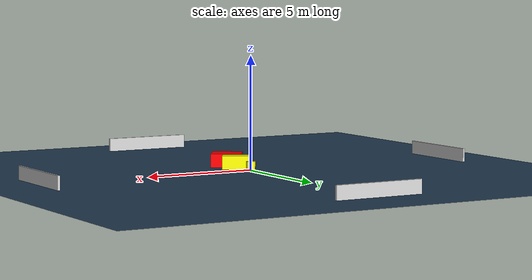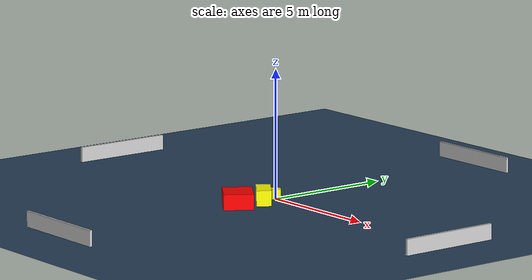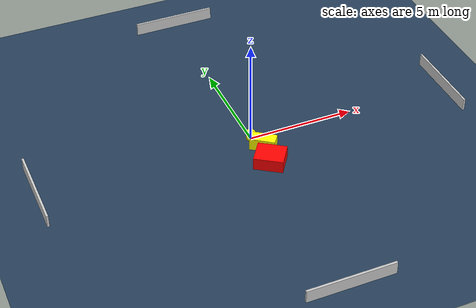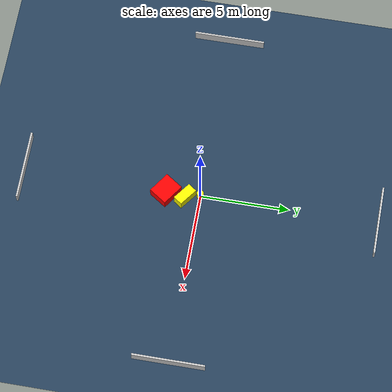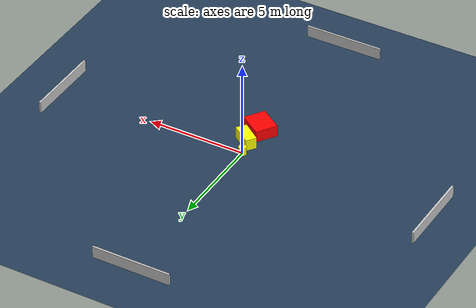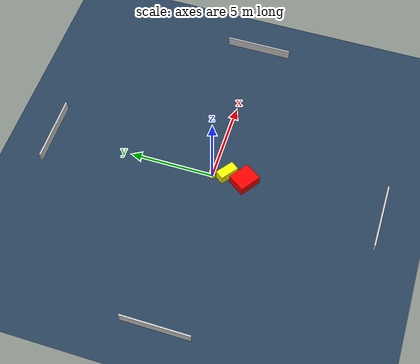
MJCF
<?xml version="1.0" ?>
<mujoco model="generated_environment">
  <option timestep="0.01" integrator="RK4" cone="elliptic"/>
  <default>
    <geom density="1"/>
  </default>
  <asset>
    <texture builtin="gradient" height="3072" name="skybox" rgb1="0.3 0.5 0.7" rgb2="0 0 0" type="skybox" width="512"/>
    <texture builtin="checker" height="300" name="groundplane" rgb1="0.2 0.3 0.4" rgb2="0.1 0.2 0.3" type="2d" width="300"/>
    <material name="groundplane" reflectance="0.2" texrepeat="5 5" texture="groundplane"/>
  </asset>
  <worldbody>
    <light dir="0 0 -1" directional="true" pos="0 0 1.5"/>
    <geom condim="3" friction="0.5 0.005 0.001" material="groundplane" name="floor" pos="0 0 0" size="0 0 0.05" type="plane"/>
    <body name="walls">
      <geom name="wall_1" condim="4" pos="-10.0 0.0 0.3" rgba="0.800000011920929 0.800000011920929 0.800000011920929 1.0" size="0.05 2.0 0.3" type="box"/>
      <geom name="wall_2" condim="4" pos="10.0 0.0 0.3" rgba="0.800000011920929 0.800000011920929 0.800000011920929 1.0" size="0.05 2.0 0.3" type="box"/>
      <geom name="wall_3" condim="4" pos="0.0 -10.0 0.3" rgba="0.800000011920929 0.800000011920929 0.800000011920929 1.0" size="2.0 0.05 0.3" type="box"/>
      <geom name="wall_4" condim="4" pos="0.0 10.0 0.3" rgba="0.800000011920929 0.800000011920929 0.800000011920929 1.0" size="2.0 0.05 0.3" type="box"/>
    </body>
    <body name="robot">
      <joint name="joint_x" type="slide" pos="0 0 0" axis="1 0 0"/>
      <joint name="joint_y" type="slide" pos="0 0 0" axis="0 1 0"/>
      <geom name="robot" type="cylinder" pos="0.0 0.0 0.2" size="0.2 0.2 0.0" mass="5.0" friction="1.0 0.005 0.0001" condim="4" rgba="1.0 1.0 0.0 1.0"/>
    </body>
    <body name="obstacle_1_movable">
      <geom name="obstacle_1_movable" condim="4" pos="0.2703095369995029 -0.811629311143214 0.3" euler="0 0 323.5114328411211" friction="0.0 0.005 0.001" rgba="1.0 1.0 0.0 1.0" size="0.5839870201423052 0.2830875199896552 0.3" type="box" mass="0.1"/>
      <joint type="free"/>
    </body>
    <body name="obstacle_2_static">
      <geom name="obstacle_2_static" condim="4" pos="0.12249960949475623 -1.9181590786187348 0.3" euler="0 0 145.74370419678164" friction="0.0 0.005 0.001" rgba="1.0 0.0 0.0 1.0" size="0.6691884204578586 0.5672859720135017 0.3" type="box"/>
    </body>
  </worldbody>
  <actuator>
    <motor name="actuator_x" joint="joint_x" gear="1" ctrlrange="-1 1"/>
    <motor name="actuator_y" joint="joint_y" gear="1" ctrlrange="-1 1"/>
  </actuator>
</mujoco>
